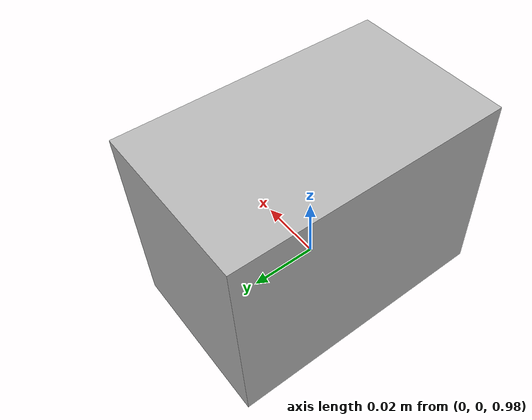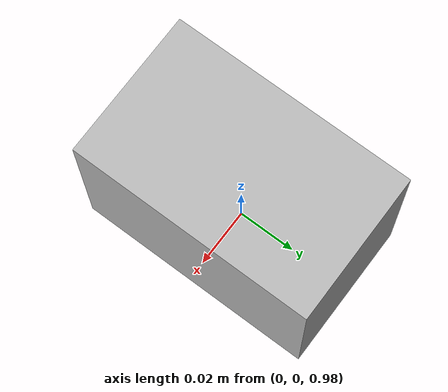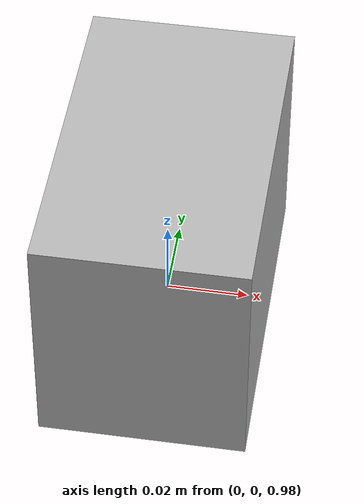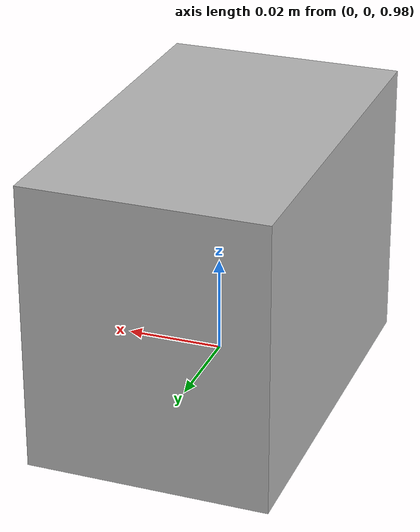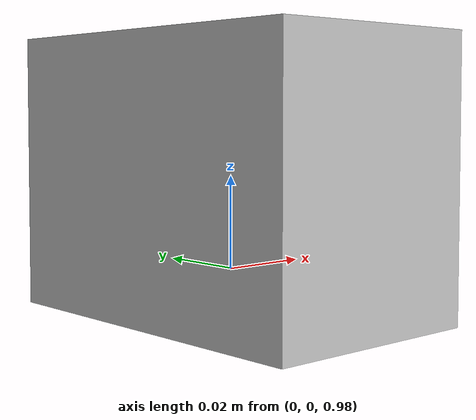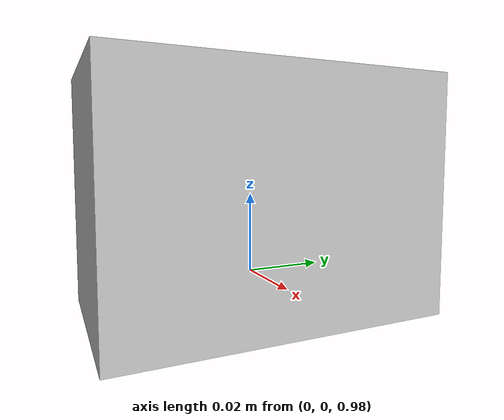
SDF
<?xml version='1.0'?>
<sdf version='1.6'>
  <model name="Blickfeld">
    <pose>0 0 1.0 0 0.0 0.0</pose>
    <link name="Blickfeld_link">
      <pose>0.0 0.0 0.0 0 0 0</pose>
      <collision name="collision">
        <geometry>
          <box>
            <size>0.05 0.082 0.06</size>
          </box>
        </geometry>
      </collision>
      <visual name="visual">
        <geometry>
          <box>
            <size>0.05 0.082 0.06</size>
          </box>
        </geometry>
      </visual>
      <sensor name="Blickfeld" type="gpu_lidar">
        <topic>lidar</topic>
        <update_rate>2.5</update_rate>
        <ray>
          <scan>
            <horizontal>
              <samples>175</samples>
              <resolution>1</resolution>
              <min_angle>-0.610865</min_angle>
              <max_angle>0.610865</max_angle>
            </horizontal>
            <vertical>
              <samples>200</samples>
              <resolution>1</resolution>
              <min_angle>-0.2618</min_angle>
              <max_angle>0.2618</max_angle>
            </vertical>
          </scan>
          <range>
            <min>1.5</min>
            <max>75.0</max>
            <resolution>0.01</resolution>
          </range>
          <noise>
            <!-- Use gaussian noise -->
            <type>gaussian</type>
            <mean>0.0</mean>
            <stddev>0.02</stddev>
          </noise>
        </ray>
        <always_on>1</always_on>
        <visualize>true</visualize>
      </sensor>
    </link>
    <static>true</static>
  </model>
</sdf>
